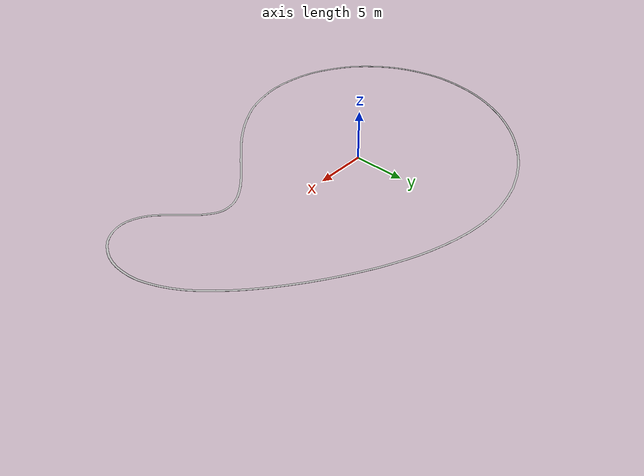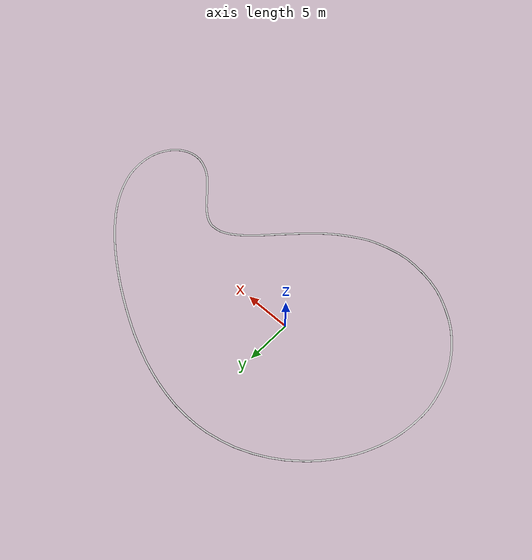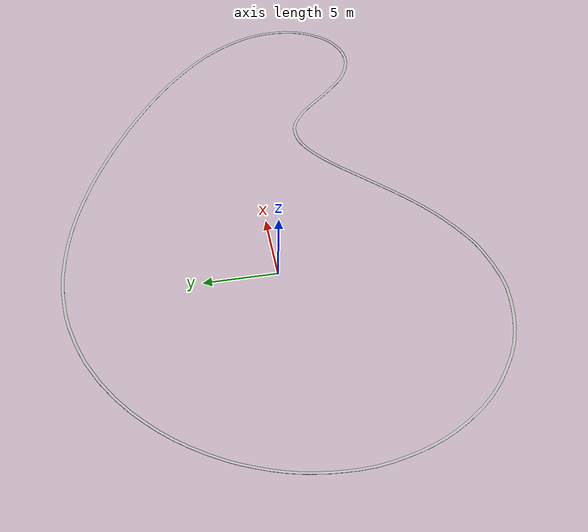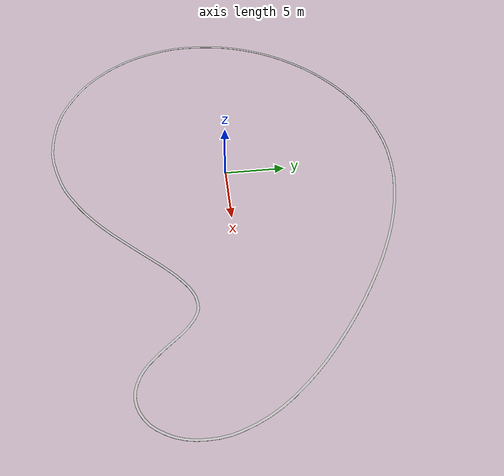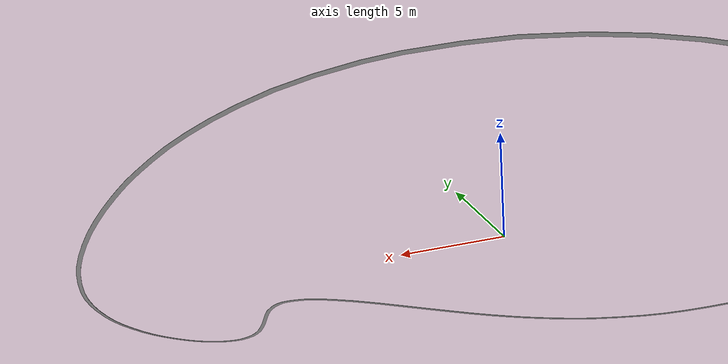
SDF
<?xml version="1.0"?>
<sdf version="1.5">
    <model name="road">
        <static>true</static>
        <link name="link">
            <collision name="collision">
                <pose>0 0 0 0 0 0</pose>
                <geometry>
                    <mesh>
                        <uri>model://road/meshes/road.stl</uri>
                    </mesh>
                </geometry>
            </collision>
            <visual name="visual">

              <pose>0 0 0 0 0 0</pose>
              <geometry>
              <mesh>
                 <uri>model://road/meshes/road.dae</uri>
              </mesh>
              </geometry>

              <material>
                  <script>
                      <uri>model://road/materials/scripts</uri>
                      <uri>model://road/materials/textures</uri>
                      <name>roadMat/Diffuse</name>
                  </script>
              </material>
             </visual>

        </link>
    </model>
</sdf>
